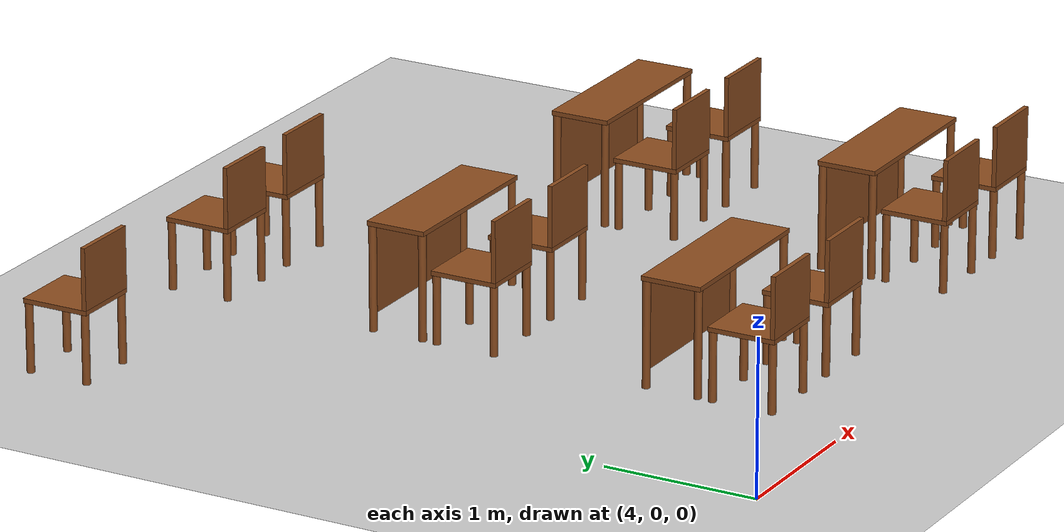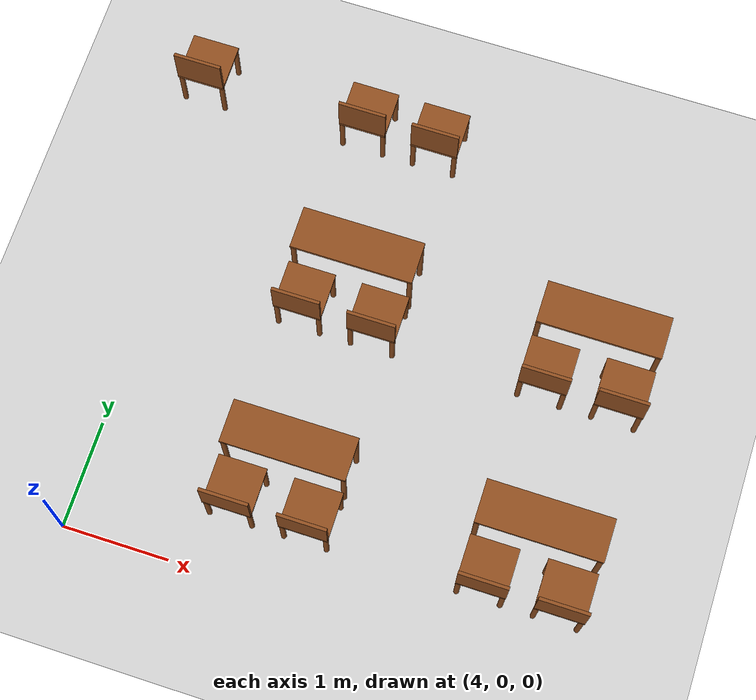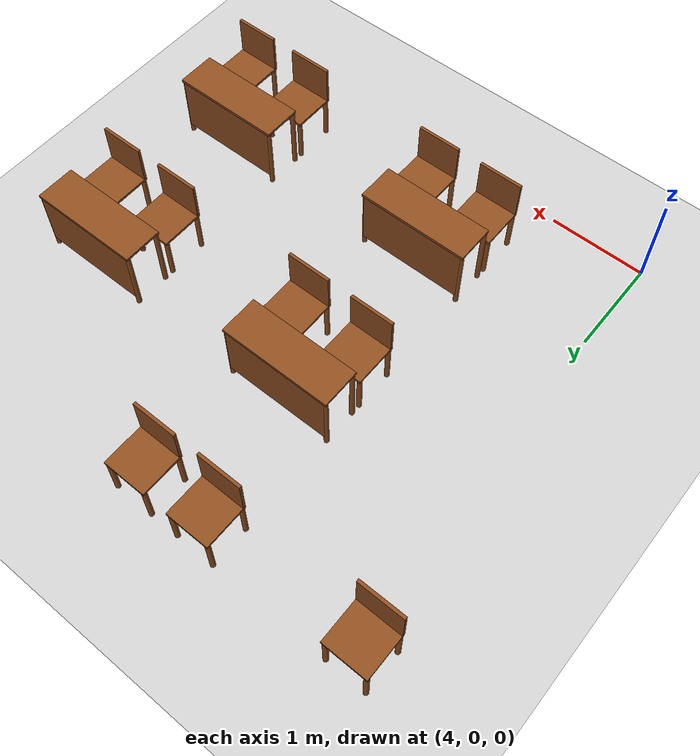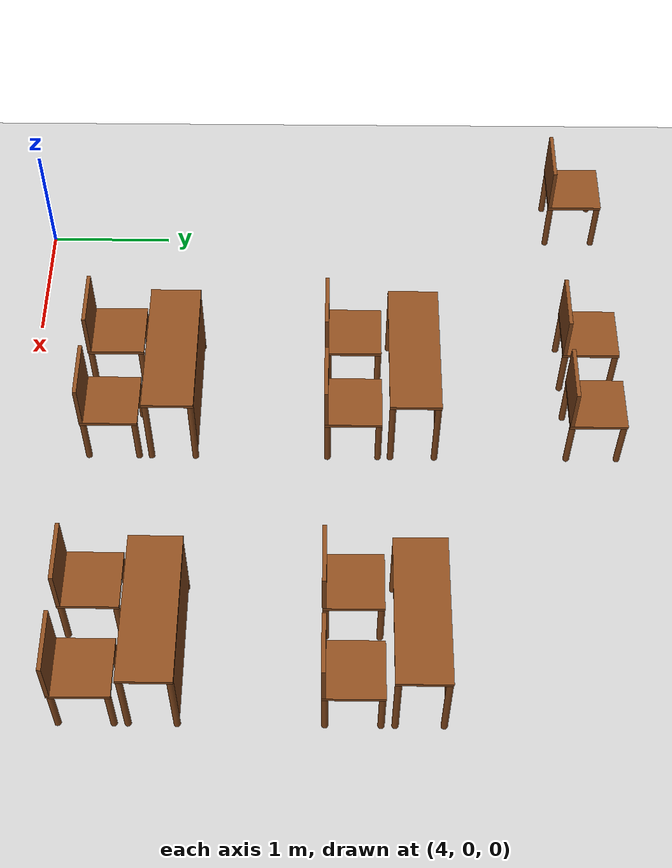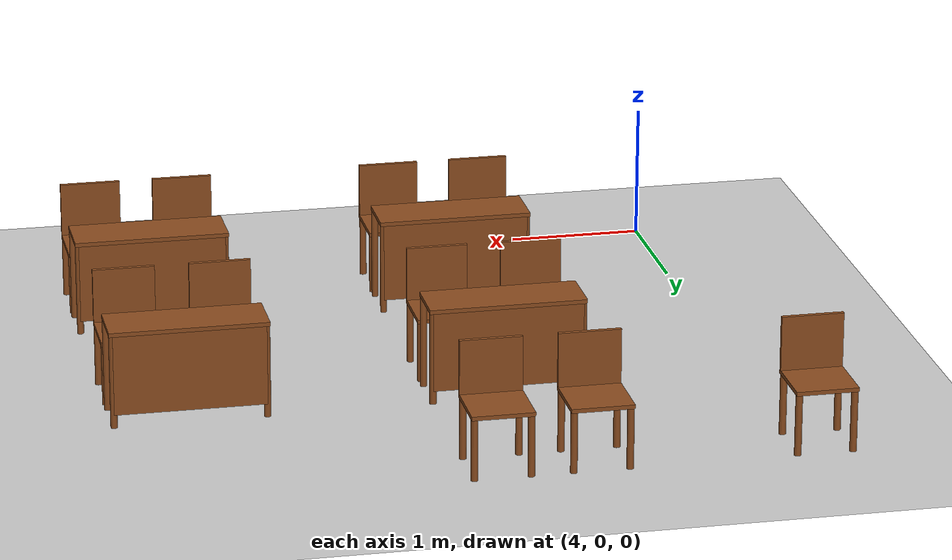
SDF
<sdf version="1.6">
 <world name="lecture_hall">
  <include><uri>model://ground_plane</uri></include>
  <include><uri>model://sun</uri></include>
  <model name="chair_3_2_2">
   <static>true</static>
   <pose>3.800 4.525 0 0 0 0</pose>
   <link name="link">
    <collision name="c_leg0">
     <pose>-0.200 -0.200 0.225 0 0 0</pose>
     <geometry><cylinder><radius>0.025</radius><length>0.450</length></cylinder></geometry>
    </collision>
    <visual name="v_leg0">
     <pose>-0.200 -0.200 0.225 0 0 0</pose>
     <geometry><cylinder><radius>0.025</radius><length>0.450</length></cylinder></geometry>
     <material><ambient>0.45 0.25 0.1 1</ambient><diffuse>0.55 0.3 0.12 1</diffuse></material>
    </visual>
    <collision name="c_leg1">
     <pose>-0.200 0.200 0.225 0 0 0</pose>
     <geometry><cylinder><radius>0.025</radius><length>0.450</length></cylinder></geometry>
    </collision>
    <visual name="v_leg1">
     <pose>-0.200 0.200 0.225 0 0 0</pose>
     <geometry><cylinder><radius>0.025</radius><length>0.450</length></cylinder></geometry>
     <material><ambient>0.45 0.25 0.1 1</ambient><diffuse>0.55 0.3 0.12 1</diffuse></material>
    </visual>
    <collision name="c_leg2">
     <pose>0.200 -0.200 0.225 0 0 0</pose>
     <geometry><cylinder><radius>0.025</radius><length>0.450</length></cylinder></geometry>
    </collision>
    <visual name="v_leg2">
     <pose>0.200 -0.200 0.225 0 0 0</pose>
     <geometry><cylinder><radius>0.025</radius><length>0.450</length></cylinder></geometry>
     <material><ambient>0.45 0.25 0.1 1</ambient><diffuse>0.55 0.3 0.12 1</diffuse></material>
    </visual>
    <collision name="c_leg3">
     <pose>0.200 0.200 0.225 0 0 0</pose>
     <geometry><cylinder><radius>0.025</radius><length>0.450</length></cylinder></geometry>
    </collision>
    <visual name="v_leg3">
     <pose>0.200 0.200 0.225 0 0 0</pose>
     <geometry><cylinder><radius>0.025</radius><length>0.450</length></cylinder></geometry>
     <material><ambient>0.45 0.25 0.1 1</ambient><diffuse>0.55 0.3 0.12 1</diffuse></material>
    </visual>
    <collision name="c_seat">
     <pose>0.000 0.000 0.465 0 0 0</pose>
     <geometry><box><size>0.450 0.450 0.030</size></box></geometry>
    </collision>
    <visual name="v_seat">
     <pose>0.000 0.000 0.465 0 0 0</pose>
     <geometry><box><size>0.450 0.450 0.030</size></box></geometry>
     <material><ambient>0.45 0.25 0.1 1</ambient><diffuse>0.55 0.3 0.12 1</diffuse></material>
    </visual>
    <collision name="c_back">
     <pose>0.000 -0.210 0.680 0 0 0</pose>
     <geometry><box><size>0.450 0.030 0.400</size></box></geometry>
    </collision>
    <visual name="v_back">
     <pose>0.000 -0.210 0.680 0 0 0</pose>
     <geometry><box><size>0.450 0.030 0.400</size></box></geometry>
     <material><ambient>0.45 0.25 0.1 1</ambient><diffuse>0.55 0.3 0.12 1</diffuse></material>
    </visual>
   </link>
  </model>
  <model name="chair_3_3_1">
   <static>true</static>
   <pose>5.400 4.525 0 0 0 0</pose>
   <link name="link">
    <collision name="c_leg0">
     <pose>-0.200 -0.200 0.225 0 0 0</pose>
     <geometry><cylinder><radius>0.025</radius><length>0.450</length></cylinder></geometry>
    </collision>
    <visual name="v_leg0">
     <pose>-0.200 -0.200 0.225 0 0 0</pose>
     <geometry><cylinder><radius>0.025</radius><length>0.450</length></cylinder></geometry>
     <material><ambient>0.45 0.25 0.1 1</ambient><diffuse>0.55 0.3 0.12 1</diffuse></material>
    </visual>
    <collision name="c_leg1">
     <pose>-0.200 0.200 0.225 0 0 0</pose>
     <geometry><cylinder><radius>0.025</radius><length>0.450</length></cylinder></geometry>
    </collision>
    <visual name="v_leg1">
     <pose>-0.200 0.200 0.225 0 0 0</pose>
     <geometry><cylinder><radius>0.025</radius><length>0.450</length></cylinder></geometry>
     <material><ambient>0.45 0.25 0.1 1</ambient><diffuse>0.55 0.3 0.12 1</diffuse></material>
    </visual>
    <collision name="c_leg2">
     <pose>0.200 -0.200 0.225 0 0 0</pose>
     <geometry><cylinder><radius>0.025</radius><length>0.450</length></cylinder></geometry>
    </collision>
    <visual name="v_leg2">
     <pose>0.200 -0.200 0.225 0 0 0</pose>
     <geometry><cylinder><radius>0.025</radius><length>0.450</length></cylinder></geometry>
     <material><ambient>0.45 0.25 0.1 1</ambient><diffuse>0.55 0.3 0.12 1</diffuse></material>
    </visual>
    <collision name="c_leg3">
     <pose>0.200 0.200 0.225 0 0 0</pose>
     <geometry><cylinder><radius>0.025</radius><length>0.450</length></cylinder></geometry>
    </collision>
    <visual name="v_leg3">
     <pose>0.200 0.200 0.225 0 0 0</pose>
     <geometry><cylinder><radius>0.025</radius><length>0.450</length></cylinder></geometry>
     <material><ambient>0.45 0.25 0.1 1</ambient><diffuse>0.55 0.3 0.12 1</diffuse></material>
    </visual>
    <collision name="c_seat">
     <pose>0.000 0.000 0.465 0 0 0</pose>
     <geometry><box><size>0.450 0.450 0.030</size></box></geometry>
    </collision>
    <visual name="v_seat">
     <pose>0.000 0.000 0.465 0 0 0</pose>
     <geometry><box><size>0.450 0.450 0.030</size></box></geometry>
     <material><ambient>0.45 0.25 0.1 1</ambient><diffuse>0.55 0.3 0.12 1</diffuse></material>
    </visual>
    <collision name="c_back">
     <pose>0.000 -0.210 0.680 0 0 0</pose>
     <geometry><box><size>0.450 0.030 0.400</size></box></geometry>
    </collision>
    <visual name="v_back">
     <pose>0.000 -0.210 0.680 0 0 0</pose>
     <geometry><box><size>0.450 0.030 0.400</size></box></geometry>
     <material><ambient>0.45 0.25 0.1 1</ambient><diffuse>0.55 0.3 0.12 1</diffuse></material>
    </visual>
   </link>
  </model>
  <model name="chair_3_3_2">
   <static>true</static>
   <pose>6.100 4.525 0 0 0 0</pose>
   <link name="link">
    <collision name="c_leg0">
     <pose>-0.200 -0.200 0.225 0 0 0</pose>
     <geometry><cylinder><radius>0.025</radius><length>0.450</length></cylinder></geometry>
    </collision>
    <visual name="v_leg0">
     <pose>-0.200 -0.200 0.225 0 0 0</pose>
     <geometry><cylinder><radius>0.025</radius><length>0.450</length></cylinder></geometry>
     <material><ambient>0.45 0.25 0.1 1</ambient><diffuse>0.55 0.3 0.12 1</diffuse></material>
    </visual>
    <collision name="c_leg1">
     <pose>-0.200 0.200 0.225 0 0 0</pose>
     <geometry><cylinder><radius>0.025</radius><length>0.450</length></cylinder></geometry>
    </collision>
    <visual name="v_leg1">
     <pose>-0.200 0.200 0.225 0 0 0</pose>
     <geometry><cylinder><radius>0.025</radius><length>0.450</length></cylinder></geometry>
     <material><ambient>0.45 0.25 0.1 1</ambient><diffuse>0.55 0.3 0.12 1</diffuse></material>
    </visual>
    <collision name="c_leg2">
     <pose>0.200 -0.200 0.225 0 0 0</pose>
     <geometry><cylinder><radius>0.025</radius><length>0.450</length></cylinder></geometry>
    </collision>
    <visual name="v_leg2">
     <pose>0.200 -0.200 0.225 0 0 0</pose>
     <geometry><cylinder><radius>0.025</radius><length>0.450</length></cylinder></geometry>
     <material><ambient>0.45 0.25 0.1 1</ambient><diffuse>0.55 0.3 0.12 1</diffuse></material>
    </visual>
    <collision name="c_leg3">
     <pose>0.200 0.200 0.225 0 0 0</pose>
     <geometry><cylinder><radius>0.025</radius><length>0.450</length></cylinder></geometry>
    </collision>
    <visual name="v_leg3">
     <pose>0.200 0.200 0.225 0 0 0</pose>
     <geometry><cylinder><radius>0.025</radius><length>0.450</length></cylinder></geometry>
     <material><ambient>0.45 0.25 0.1 1</ambient><diffuse>0.55 0.3 0.12 1</diffuse></material>
    </visual>
    <collision name="c_seat">
     <pose>0.000 0.000 0.465 0 0 0</pose>
     <geometry><box><size>0.450 0.450 0.030</size></box></geometry>
    </collision>
    <visual name="v_seat">
     <pose>0.000 0.000 0.465 0 0 0</pose>
     <geometry><box><size>0.450 0.450 0.030</size></box></geometry>
     <material><ambient>0.45 0.25 0.1 1</ambient><diffuse>0.55 0.3 0.12 1</diffuse></material>
    </visual>
    <collision name="c_back">
     <pose>0.000 -0.210 0.680 0 0 0</pose>
     <geometry><box><size>0.450 0.030 0.400</size></box></geometry>
    </collision>
    <visual name="v_back">
     <pose>0.000 -0.210 0.680 0 0 0</pose>
     <geometry><box><size>0.450 0.030 0.400</size></box></geometry>
     <material><ambient>0.45 0.25 0.1 1</ambient><diffuse>0.55 0.3 0.12 1</diffuse></material>
    </visual>
   </link>
  </model>
  <model name="desk_4_3">
   <static>true</static>
   <pose>5.750 3.100 0 0 0 0</pose>
   <link name="link">
    <collision name="c_leg0">
     <pose>-0.550 -0.175 0.345 0 0 0</pose>
     <geometry><cylinder><radius>0.025</radius><length>0.690</length></cylinder></geometry>
    </collision>
    <visual name="v_leg0">
     <pose>-0.550 -0.175 0.345 0 0 0</pose>
     <geometry><cylinder><radius>0.025</radius><length>0.690</length></cylinder></geometry>
     <material><ambient>0.45 0.25 0.1 1</ambient><diffuse>0.55 0.3 0.12 1</diffuse></material>
    </visual>
    <collision name="c_leg1">
     <pose>-0.550 0.175 0.345 0 0 0</pose>
     <geometry><cylinder><radius>0.025</radius><length>0.690</length></cylinder></geometry>
    </collision>
    <visual name="v_leg1">
     <pose>-0.550 0.175 0.345 0 0 0</pose>
     <geometry><cylinder><radius>0.025</radius><length>0.690</length></cylinder></geometry>
     <material><ambient>0.45 0.25 0.1 1</ambient><diffuse>0.55 0.3 0.12 1</diffuse></material>
    </visual>
    <collision name="c_leg2">
     <pose>0.550 -0.175 0.345 0 0 0</pose>
     <geometry><cylinder><radius>0.025</radius><length>0.690</length></cylinder></geometry>
    </collision>
    <visual name="v_leg2">
     <pose>0.550 -0.175 0.345 0 0 0</pose>
     <geometry><cylinder><radius>0.025</radius><length>0.690</length></cylinder></geometry>
     <material><ambient>0.45 0.25 0.1 1</ambient><diffuse>0.55 0.3 0.12 1</diffuse></material>
    </visual>
    <collision name="c_leg3">
     <pose>0.550 0.175 0.345 0 0 0</pose>
     <geometry><cylinder><radius>0.025</radius><length>0.690</length></cylinder></geometry>
    </collision>
    <visual name="v_leg3">
     <pose>0.550 0.175 0.345 0 0 0</pose>
     <geometry><cylinder><radius>0.025</radius><length>0.690</length></cylinder></geometry>
     <material><ambient>0.45 0.25 0.1 1</ambient><diffuse>0.55 0.3 0.12 1</diffuse></material>
    </visual>
    <collision name="c_top">
     <pose>0.000 0.000 0.705 0 0 0</pose>
     <geometry><box><size>1.150 0.400 0.030</size></box></geometry>
    </collision>
    <visual name="v_top">
     <pose>0.000 0.000 0.705 0 0 0</pose>
     <geometry><box><size>1.150 0.400 0.030</size></box></geometry>
     <material><ambient>0.45 0.25 0.1 1</ambient><diffuse>0.55 0.3 0.12 1</diffuse></material>
    </visual>
    <collision name="c_panel">
     <pose>0.000 0.190 0.395 0 0 0</pose>
     <geometry><box><size>1.100 0.020 0.590</size></box></geometry>
    </collision>
    <visual name="v_panel">
     <pose>0.000 0.190 0.395 0 0 0</pose>
     <geometry><box><size>1.100 0.020 0.590</size></box></geometry>
     <material><ambient>0.45 0.25 0.1 1</ambient><diffuse>0.55 0.3 0.12 1</diffuse></material>
    </visual>
   </link>
  </model>
  <model name="chair_4_3_1">
   <static>true</static>
   <pose>5.400 2.625 0 0 0 0</pose>
   <link name="link">
    <collision name="c_leg0">
     <pose>-0.200 -0.200 0.225 0 0 0</pose>
     <geometry><cylinder><radius>0.025</radius><length>0.450</length></cylinder></geometry>
    </collision>
    <visual name="v_leg0">
     <pose>-0.200 -0.200 0.225 0 0 0</pose>
     <geometry><cylinder><radius>0.025</radius><length>0.450</length></cylinder></geometry>
     <material><ambient>0.45 0.25 0.1 1</ambient><diffuse>0.55 0.3 0.12 1</diffuse></material>
    </visual>
    <collision name="c_leg1">
     <pose>-0.200 0.200 0.225 0 0 0</pose>
     <geometry><cylinder><radius>0.025</radius><length>0.450</length></cylinder></geometry>
    </collision>
    <visual name="v_leg1">
     <pose>-0.200 0.200 0.225 0 0 0</pose>
     <geometry><cylinder><radius>0.025</radius><length>0.450</length></cylinder></geometry>
     <material><ambient>0.45 0.25 0.1 1</ambient><diffuse>0.55 0.3 0.12 1</diffuse></material>
    </visual>
    <collision name="c_leg2">
     <pose>0.200 -0.200 0.225 0 0 0</pose>
     <geometry><cylinder><radius>0.025</radius><length>0.450</length></cylinder></geometry>
    </collision>
    <visual name="v_leg2">
     <pose>0.200 -0.200 0.225 0 0 0</pose>
     <geometry><cylinder><radius>0.025</radius><length>0.450</length></cylinder></geometry>
     <material><ambient>0.45 0.25 0.1 1</ambient><diffuse>0.55 0.3 0.12 1</diffuse></material>
    </visual>
    <collision name="c_leg3">
     <pose>0.200 0.200 0.225 0 0 0</pose>
     <geometry><cylinder><radius>0.025</radius><length>0.450</length></cylinder></geometry>
    </collision>
    <visual name="v_leg3">
     <pose>0.200 0.200 0.225 0 0 0</pose>
     <geometry><cylinder><radius>0.025</radius><length>0.450</length></cylinder></geometry>
     <material><ambient>0.45 0.25 0.1 1</ambient><diffuse>0.55 0.3 0.12 1</diffuse></material>
    </visual>
    <collision name="c_seat">
     <pose>0.000 0.000 0.465 0 0 0</pose>
     <geometry><box><size>0.450 0.450 0.030</size></box></geometry>
    </collision>
    <visual name="v_seat">
     <pose>0.000 0.000 0.465 0 0 0</pose>
     <geometry><box><size>0.450 0.450 0.030</size></box></geometry>
     <material><ambient>0.45 0.25 0.1 1</ambient><diffuse>0.55 0.3 0.12 1</diffuse></material>
    </visual>
    <collision name="c_back">
     <pose>0.000 -0.210 0.680 0 0 0</pose>
     <geometry><box><size>0.450 0.030 0.400</size></box></geometry>
    </collision>
    <visual name="v_back">
     <pose>0.000 -0.210 0.680 0 0 0</pose>
     <geometry><box><size>0.450 0.030 0.400</size></box></geometry>
     <material><ambient>0.45 0.25 0.1 1</ambient><diffuse>0.55 0.3 0.12 1</diffuse></material>
    </visual>
   </link>
  </model>
  <model name="chair_4_3_2">
   <static>true</static>
   <pose>6.100 2.625 0 0 0 0</pose>
   <link name="link">
    <collision name="c_leg0">
     <pose>-0.200 -0.200 0.225 0 0 0</pose>
     <geometry><cylinder><radius>0.025</radius><length>0.450</length></cylinder></geometry>
    </collision>
    <visual name="v_leg0">
     <pose>-0.200 -0.200 0.225 0 0 0</pose>
     <geometry><cylinder><radius>0.025</radius><length>0.450</length></cylinder></geometry>
     <material><ambient>0.45 0.25 0.1 1</ambient><diffuse>0.55 0.3 0.12 1</diffuse></material>
    </visual>
    <collision name="c_leg1">
     <pose>-0.200 0.200 0.225 0 0 0</pose>
     <geometry><cylinder><radius>0.025</radius><length>0.450</length></cylinder></geometry>
    </collision>
    <visual name="v_leg1">
     <pose>-0.200 0.200 0.225 0 0 0</pose>
     <geometry><cylinder><radius>0.025</radius><length>0.450</length></cylinder></geometry>
     <material><ambient>0.45 0.25 0.1 1</ambient><diffuse>0.55 0.3 0.12 1</diffuse></material>
    </visual>
    <collision name="c_leg2">
     <pose>0.200 -0.200 0.225 0 0 0</pose>
     <geometry><cylinder><radius>0.025</radius><length>0.450</length></cylinder></geometry>
    </collision>
    <visual name="v_leg2">
     <pose>0.200 -0.200 0.225 0 0 0</pose>
     <geometry><cylinder><radius>0.025</radius><length>0.450</length></cylinder></geometry>
     <material><ambient>0.45 0.25 0.1 1</ambient><diffuse>0.55 0.3 0.12 1</diffuse></material>
    </visual>
    <collision name="c_leg3">
     <pose>0.200 0.200 0.225 0 0 0</pose>
     <geometry><cylinder><radius>0.025</radius><length>0.450</length></cylinder></geometry>
    </collision>
    <visual name="v_leg3">
     <pose>0.200 0.200 0.225 0 0 0</pose>
     <geometry><cylinder><radius>0.025</radius><length>0.450</length></cylinder></geometry>
     <material><ambient>0.45 0.25 0.1 1</ambient><diffuse>0.55 0.3 0.12 1</diffuse></material>
    </visual>
    <collision name="c_seat">
     <pose>0.000 0.000 0.465 0 0 0</pose>
     <geometry><box><size>0.450 0.450 0.030</size></box></geometry>
    </collision>
    <visual name="v_seat">
     <pose>0.000 0.000 0.465 0 0 0</pose>
     <geometry><box><size>0.450 0.450 0.030</size></box></geometry>
     <material><ambient>0.45 0.25 0.1 1</ambient><diffuse>0.55 0.3 0.12 1</diffuse></material>
    </visual>
    <collision name="c_back">
     <pose>0.000 -0.210 0.680 0 0 0</pose>
     <geometry><box><size>0.450 0.030 0.400</size></box></geometry>
    </collision>
    <visual name="v_back">
     <pose>0.000 -0.210 0.680 0 0 0</pose>
     <geometry><box><size>0.450 0.030 0.400</size></box></geometry>
     <material><ambient>0.45 0.25 0.1 1</ambient><diffuse>0.55 0.3 0.12 1</diffuse></material>
    </visual>
   </link>
  </model>
  <model name="desk_4_4">
   <static>true</static>
   <pose>8.050 3.100 0 0 0 0</pose>
   <link name="link">
    <collision name="c_leg0">
     <pose>-0.550 -0.175 0.345 0 0 0</pose>
     <geometry><cylinder><radius>0.025</radius><length>0.690</length></cylinder></geometry>
    </collision>
    <visual name="v_leg0">
     <pose>-0.550 -0.175 0.345 0 0 0</pose>
     <geometry><cylinder><radius>0.025</radius><length>0.690</length></cylinder></geometry>
     <material><ambient>0.45 0.25 0.1 1</ambient><diffuse>0.55 0.3 0.12 1</diffuse></material>
    </visual>
    <collision name="c_leg1">
     <pose>-0.550 0.175 0.345 0 0 0</pose>
     <geometry><cylinder><radius>0.025</radius><length>0.690</length></cylinder></geometry>
    </collision>
    <visual name="v_leg1">
     <pose>-0.550 0.175 0.345 0 0 0</pose>
     <geometry><cylinder><radius>0.025</radius><length>0.690</length></cylinder></geometry>
     <material><ambient>0.45 0.25 0.1 1</ambient><diffuse>0.55 0.3 0.12 1</diffuse></material>
    </visual>
    <collision name="c_leg2">
     <pose>0.550 -0.175 0.345 0 0 0</pose>
     <geometry><cylinder><radius>0.025</radius><length>0.690</length></cylinder></geometry>
    </collision>
    <visual name="v_leg2">
     <pose>0.550 -0.175 0.345 0 0 0</pose>
     <geometry><cylinder><radius>0.025</radius><length>0.690</length></cylinder></geometry>
     <material><ambient>0.45 0.25 0.1 1</ambient><diffuse>0.55 0.3 0.12 1</diffuse></material>
    </visual>
    <collision name="c_leg3">
     <pose>0.550 0.175 0.345 0 0 0</pose>
     <geometry><cylinder><radius>0.025</radius><length>0.690</length></cylinder></geometry>
    </collision>
    <visual name="v_leg3">
     <pose>0.550 0.175 0.345 0 0 0</pose>
     <geometry><cylinder><radius>0.025</radius><length>0.690</length></cylinder></geometry>
     <material><ambient>0.45 0.25 0.1 1</ambient><diffuse>0.55 0.3 0.12 1</diffuse></material>
    </visual>
    <collision name="c_top">
     <pose>0.000 0.000 0.705 0 0 0</pose>
     <geometry><box><size>1.150 0.400 0.030</size></box></geometry>
    </collision>
    <visual name="v_top">
     <pose>0.000 0.000 0.705 0 0 0</pose>
     <geometry><box><size>1.150 0.400 0.030</size></box></geometry>
     <material><ambient>0.45 0.25 0.1 1</ambient><diffuse>0.55 0.3 0.12 1</diffuse></material>
    </visual>
    <collision name="c_panel">
     <pose>0.000 0.190 0.395 0 0 0</pose>
     <geometry><box><size>1.100 0.020 0.590</size></box></geometry>
    </collision>
    <visual name="v_panel">
     <pose>0.000 0.190 0.395 0 0 0</pose>
     <geometry><box><size>1.100 0.020 0.590</size></box></geometry>
     <material><ambient>0.45 0.25 0.1 1</ambient><diffuse>0.55 0.3 0.12 1</diffuse></material>
    </visual>
   </link>
  </model>
  <model name="chair_4_4_1">
   <static>true</static>
   <pose>7.700 2.625 0 0 0 0</pose>
   <link name="link">
    <collision name="c_leg0">
     <pose>-0.200 -0.200 0.225 0 0 0</pose>
     <geometry><cylinder><radius>0.025</radius><length>0.450</length></cylinder></geometry>
    </collision>
    <visual name="v_leg0">
     <pose>-0.200 -0.200 0.225 0 0 0</pose>
     <geometry><cylinder><radius>0.025</radius><length>0.450</length></cylinder></geometry>
     <material><ambient>0.45 0.25 0.1 1</ambient><diffuse>0.55 0.3 0.12 1</diffuse></material>
    </visual>
    <collision name="c_leg1">
     <pose>-0.200 0.200 0.225 0 0 0</pose>
     <geometry><cylinder><radius>0.025</radius><length>0.450</length></cylinder></geometry>
    </collision>
    <visual name="v_leg1">
     <pose>-0.200 0.200 0.225 0 0 0</pose>
     <geometry><cylinder><radius>0.025</radius><length>0.450</length></cylinder></geometry>
     <material><ambient>0.45 0.25 0.1 1</ambient><diffuse>0.55 0.3 0.12 1</diffuse></material>
    </visual>
    <collision name="c_leg2">
     <pose>0.200 -0.200 0.225 0 0 0</pose>
     <geometry><cylinder><radius>0.025</radius><length>0.450</length></cylinder></geometry>
    </collision>
    <visual name="v_leg2">
     <pose>0.200 -0.200 0.225 0 0 0</pose>
     <geometry><cylinder><radius>0.025</radius><length>0.450</length></cylinder></geometry>
     <material><ambient>0.45 0.25 0.1 1</ambient><diffuse>0.55 0.3 0.12 1</diffuse></material>
    </visual>
    <collision name="c_leg3">
     <pose>0.200 0.200 0.225 0 0 0</pose>
     <geometry><cylinder><radius>0.025</radius><length>0.450</length></cylinder></geometry>
    </collision>
    <visual name="v_leg3">
     <pose>0.200 0.200 0.225 0 0 0</pose>
     <geometry><cylinder><radius>0.025</radius><length>0.450</length></cylinder></geometry>
     <material><ambient>0.45 0.25 0.1 1</ambient><diffuse>0.55 0.3 0.12 1</diffuse></material>
    </visual>
    <collision name="c_seat">
     <pose>0.000 0.000 0.465 0 0 0</pose>
     <geometry><box><size>0.450 0.450 0.030</size></box></geometry>
    </collision>
    <visual name="v_seat">
     <pose>0.000 0.000 0.465 0 0 0</pose>
     <geometry><box><size>0.450 0.450 0.030</size></box></geometry>
     <material><ambient>0.45 0.25 0.1 1</ambient><diffuse>0.55 0.3 0.12 1</diffuse></material>
    </visual>
    <collision name="c_back">
     <pose>0.000 -0.210 0.680 0 0 0</pose>
     <geometry><box><size>0.450 0.030 0.400</size></box></geometry>
    </collision>
    <visual name="v_back">
     <pose>0.000 -0.210 0.680 0 0 0</pose>
     <geometry><box><size>0.450 0.030 0.400</size></box></geometry>
     <material><ambient>0.45 0.25 0.1 1</ambient><diffuse>0.55 0.3 0.12 1</diffuse></material>
    </visual>
   </link>
  </model>
  <model name="chair_4_4_2">
   <static>true</static>
   <pose>8.400 2.625 0 0 0 0</pose>
   <link name="link">
    <collision name="c_leg0">
     <pose>-0.200 -0.200 0.225 0 0 0</pose>
     <geometry><cylinder><radius>0.025</radius><length>0.450</length></cylinder></geometry>
    </collision>
    <visual name="v_leg0">
     <pose>-0.200 -0.200 0.225 0 0 0</pose>
     <geometry><cylinder><radius>0.025</radius><length>0.450</length></cylinder></geometry>
     <material><ambient>0.45 0.25 0.1 1</ambient><diffuse>0.55 0.3 0.12 1</diffuse></material>
    </visual>
    <collision name="c_leg1">
     <pose>-0.200 0.200 0.225 0 0 0</pose>
     <geometry><cylinder><radius>0.025</radius><length>0.450</length></cylinder></geometry>
    </collision>
    <visual name="v_leg1">
     <pose>-0.200 0.200 0.225 0 0 0</pose>
     <geometry><cylinder><radius>0.025</radius><length>0.450</length></cylinder></geometry>
     <material><ambient>0.45 0.25 0.1 1</ambient><diffuse>0.55 0.3 0.12 1</diffuse></material>
    </visual>
    <collision name="c_leg2">
     <pose>0.200 -0.200 0.225 0 0 0</pose>
     <geometry><cylinder><radius>0.025</radius><length>0.450</length></cylinder></geometry>
    </collision>
    <visual name="v_leg2">
     <pose>0.200 -0.200 0.225 0 0 0</pose>
     <geometry><cylinder><radius>0.025</radius><length>0.450</length></cylinder></geometry>
     <material><ambient>0.45 0.25 0.1 1</ambient><diffuse>0.55 0.3 0.12 1</diffuse></material>
    </visual>
    <collision name="c_leg3">
     <pose>0.200 0.200 0.225 0 0 0</pose>
     <geometry><cylinder><radius>0.025</radius><length>0.450</length></cylinder></geometry>
    </collision>
    <visual name="v_leg3">
     <pose>0.200 0.200 0.225 0 0 0</pose>
     <geometry><cylinder><radius>0.025</radius><length>0.450</length></cylinder></geometry>
     <material><ambient>0.45 0.25 0.1 1</ambient><diffuse>0.55 0.3 0.12 1</diffuse></material>
    </visual>
    <collision name="c_seat">
     <pose>0.000 0.000 0.465 0 0 0</pose>
     <geometry><box><size>0.450 0.450 0.030</size></box></geometry>
    </collision>
    <visual name="v_seat">
     <pose>0.000 0.000 0.465 0 0 0</pose>
     <geometry><box><size>0.450 0.450 0.030</size></box></geometry>
     <material><ambient>0.45 0.25 0.1 1</ambient><diffuse>0.55 0.3 0.12 1</diffuse></material>
    </visual>
    <collision name="c_back">
     <pose>0.000 -0.210 0.680 0 0 0</pose>
     <geometry><box><size>0.450 0.030 0.400</size></box></geometry>
    </collision>
    <visual name="v_back">
     <pose>0.000 -0.210 0.680 0 0 0</pose>
     <geometry><box><size>0.450 0.030 0.400</size></box></geometry>
     <material><ambient>0.45 0.25 0.1 1</ambient><diffuse>0.55 0.3 0.12 1</diffuse></material>
    </visual>
   </link>
  </model>
  <model name="desk_5_3">
   <static>true</static>
   <pose>5.750 1.200 0 0 0 0</pose>
   <link name="link">
    <collision name="c_leg0">
     <pose>-0.550 -0.175 0.345 0 0 0</pose>
     <geometry><cylinder><radius>0.025</radius><length>0.690</length></cylinder></geometry>
    </collision>
    <visual name="v_leg0">
     <pose>-0.550 -0.175 0.345 0 0 0</pose>
     <geometry><cylinder><radius>0.025</radius><length>0.690</length></cylinder></geometry>
     <material><ambient>0.45 0.25 0.1 1</ambient><diffuse>0.55 0.3 0.12 1</diffuse></material>
    </visual>
    <collision name="c_leg1">
     <pose>-0.550 0.175 0.345 0 0 0</pose>
     <geometry><cylinder><radius>0.025</radius><length>0.690</length></cylinder></geometry>
    </collision>
    <visual name="v_leg1">
     <pose>-0.550 0.175 0.345 0 0 0</pose>
     <geometry><cylinder><radius>0.025</radius><length>0.690</length></cylinder></geometry>
     <material><ambient>0.45 0.25 0.1 1</ambient><diffuse>0.55 0.3 0.12 1</diffuse></material>
    </visual>
    <collision name="c_leg2">
     <pose>0.550 -0.175 0.345 0 0 0</pose>
     <geometry><cylinder><radius>0.025</radius><length>0.690</length></cylinder></geometry>
    </collision>
    <visual name="v_leg2">
     <pose>0.550 -0.175 0.345 0 0 0</pose>
     <geometry><cylinder><radius>0.025</radius><length>0.690</length></cylinder></geometry>
     <material><ambient>0.45 0.25 0.1 1</ambient><diffuse>0.55 0.3 0.12 1</diffuse></material>
    </visual>
    <collision name="c_leg3">
     <pose>0.550 0.175 0.345 0 0 0</pose>
     <geometry><cylinder><radius>0.025</radius><length>0.690</length></cylinder></geometry>
    </collision>
    <visual name="v_leg3">
     <pose>0.550 0.175 0.345 0 0 0</pose>
     <geometry><cylinder><radius>0.025</radius><length>0.690</length></cylinder></geometry>
     <material><ambient>0.45 0.25 0.1 1</ambient><diffuse>0.55 0.3 0.12 1</diffuse></material>
    </visual>
    <collision name="c_top">
     <pose>0.000 0.000 0.705 0 0 0</pose>
     <geometry><box><size>1.150 0.400 0.030</size></box></geometry>
    </collision>
    <visual name="v_top">
     <pose>0.000 0.000 0.705 0 0 0</pose>
     <geometry><box><size>1.150 0.400 0.030</size></box></geometry>
     <material><ambient>0.45 0.25 0.1 1</ambient><diffuse>0.55 0.3 0.12 1</diffuse></material>
    </visual>
    <collision name="c_panel">
     <pose>0.000 0.190 0.395 0 0 0</pose>
     <geometry><box><size>1.100 0.020 0.590</size></box></geometry>
    </collision>
    <visual name="v_panel">
     <pose>0.000 0.190 0.395 0 0 0</pose>
     <geometry><box><size>1.100 0.020 0.590</size></box></geometry>
     <material><ambient>0.45 0.25 0.1 1</ambient><diffuse>0.55 0.3 0.12 1</diffuse></material>
    </visual>
   </link>
  </model>
  <model name="chair_5_3_1">
   <static>true</static>
   <pose>5.400 0.725 0 0 0 0</pose>
   <link name="link">
    <collision name="c_leg0">
     <pose>-0.200 -0.200 0.225 0 0 0</pose>
     <geometry><cylinder><radius>0.025</radius><length>0.450</length></cylinder></geometry>
    </collision>
    <visual name="v_leg0">
     <pose>-0.200 -0.200 0.225 0 0 0</pose>
     <geometry><cylinder><radius>0.025</radius><length>0.450</length></cylinder></geometry>
     <material><ambient>0.45 0.25 0.1 1</ambient><diffuse>0.55 0.3 0.12 1</diffuse></material>
    </visual>
    <collision name="c_leg1">
     <pose>-0.200 0.200 0.225 0 0 0</pose>
     <geometry><cylinder><radius>0.025</radius><length>0.450</length></cylinder></geometry>
    </collision>
    <visual name="v_leg1">
     <pose>-0.200 0.200 0.225 0 0 0</pose>
     <geometry><cylinder><radius>0.025</radius><length>0.450</length></cylinder></geometry>
     <material><ambient>0.45 0.25 0.1 1</ambient><diffuse>0.55 0.3 0.12 1</diffuse></material>
    </visual>
    <collision name="c_leg2">
     <pose>0.200 -0.200 0.225 0 0 0</pose>
     <geometry><cylinder><radius>0.025</radius><length>0.450</length></cylinder></geometry>
    </collision>
    <visual name="v_leg2">
     <pose>0.200 -0.200 0.225 0 0 0</pose>
     <geometry><cylinder><radius>0.025</radius><length>0.450</length></cylinder></geometry>
     <material><ambient>0.45 0.25 0.1 1</ambient><diffuse>0.55 0.3 0.12 1</diffuse></material>
    </visual>
    <collision name="c_leg3">
     <pose>0.200 0.200 0.225 0 0 0</pose>
     <geometry><cylinder><radius>0.025</radius><length>0.450</length></cylinder></geometry>
    </collision>
    <visual name="v_leg3">
     <pose>0.200 0.200 0.225 0 0 0</pose>
     <geometry><cylinder><radius>0.025</radius><length>0.450</length></cylinder></geometry>
     <material><ambient>0.45 0.25 0.1 1</ambient><diffuse>0.55 0.3 0.12 1</diffuse></material>
    </visual>
    <collision name="c_seat">
     <pose>0.000 0.000 0.465 0 0 0</pose>
     <geometry><box><size>0.450 0.450 0.030</size></box></geometry>
    </collision>
    <visual name="v_seat">
     <pose>0.000 0.000 0.465 0 0 0</pose>
     <geometry><box><size>0.450 0.450 0.030</size></box></geometry>
     <material><ambient>0.45 0.25 0.1 1</ambient><diffuse>0.55 0.3 0.12 1</diffuse></material>
    </visual>
    <collision name="c_back">
     <pose>0.000 -0.210 0.680 0 0 0</pose>
     <geometry><box><size>0.450 0.030 0.400</size></box></geometry>
    </collision>
    <visual name="v_back">
     <pose>0.000 -0.210 0.680 0 0 0</pose>
     <geometry><box><size>0.450 0.030 0.400</size></box></geometry>
     <material><ambient>0.45 0.25 0.1 1</ambient><diffuse>0.55 0.3 0.12 1</diffuse></material>
    </visual>
   </link>
  </model>
  <model name="chair_5_3_2">
   <static>true</static>
   <pose>6.100 0.725 0 0 0 0</pose>
   <link name="link">
    <collision name="c_leg0">
     <pose>-0.200 -0.200 0.225 0 0 0</pose>
     <geometry><cylinder><radius>0.025</radius><length>0.450</length></cylinder></geometry>
    </collision>
    <visual name="v_leg0">
     <pose>-0.200 -0.200 0.225 0 0 0</pose>
     <geometry><cylinder><radius>0.025</radius><length>0.450</length></cylinder></geometry>
     <material><ambient>0.45 0.25 0.1 1</ambient><diffuse>0.55 0.3 0.12 1</diffuse></material>
    </visual>
    <collision name="c_leg1">
     <pose>-0.200 0.200 0.225 0 0 0</pose>
     <geometry><cylinder><radius>0.025</radius><length>0.450</length></cylinder></geometry>
    </collision>
    <visual name="v_leg1">
     <pose>-0.200 0.200 0.225 0 0 0</pose>
     <geometry><cylinder><radius>0.025</radius><length>0.450</length></cylinder></geometry>
     <material><ambient>0.45 0.25 0.1 1</ambient><diffuse>0.55 0.3 0.12 1</diffuse></material>
    </visual>
    <collision name="c_leg2">
     <pose>0.200 -0.200 0.225 0 0 0</pose>
     <geometry><cylinder><radius>0.025</radius><length>0.450</length></cylinder></geometry>
    </collision>
    <visual name="v_leg2">
     <pose>0.200 -0.200 0.225 0 0 0</pose>
     <geometry><cylinder><radius>0.025</radius><length>0.450</length></cylinder></geometry>
     <material><ambient>0.45 0.25 0.1 1</ambient><diffuse>0.55 0.3 0.12 1</diffuse></material>
    </visual>
    <collision name="c_leg3">
     <pose>0.200 0.200 0.225 0 0 0</pose>
     <geometry><cylinder><radius>0.025</radius><length>0.450</length></cylinder></geometry>
    </collision>
    <visual name="v_leg3">
     <pose>0.200 0.200 0.225 0 0 0</pose>
     <geometry><cylinder><radius>0.025</radius><length>0.450</length></cylinder></geometry>
     <material><ambient>0.45 0.25 0.1 1</ambient><diffuse>0.55 0.3 0.12 1</diffuse></material>
    </visual>
    <collision name="c_seat">
     <pose>0.000 0.000 0.465 0 0 0</pose>
     <geometry><box><size>0.450 0.450 0.030</size></box></geometry>
    </collision>
    <visual name="v_seat">
     <pose>0.000 0.000 0.465 0 0 0</pose>
     <geometry><box><size>0.450 0.450 0.030</size></box></geometry>
     <material><ambient>0.45 0.25 0.1 1</ambient><diffuse>0.55 0.3 0.12 1</diffuse></material>
    </visual>
    <collision name="c_back">
     <pose>0.000 -0.210 0.680 0 0 0</pose>
     <geometry><box><size>0.450 0.030 0.400</size></box></geometry>
    </collision>
    <visual name="v_back">
     <pose>0.000 -0.210 0.680 0 0 0</pose>
     <geometry><box><size>0.450 0.030 0.400</size></box></geometry>
     <material><ambient>0.45 0.25 0.1 1</ambient><diffuse>0.55 0.3 0.12 1</diffuse></material>
    </visual>
   </link>
  </model>
  <model name="desk_5_4">
   <static>true</static>
   <pose>8.050 1.200 0 0 0 0</pose>
   <link name="link">
    <collision name="c_leg0">
     <pose>-0.550 -0.175 0.345 0 0 0</pose>
     <geometry><cylinder><radius>0.025</radius><length>0.690</length></cylinder></geometry>
    </collision>
    <visual name="v_leg0">
     <pose>-0.550 -0.175 0.345 0 0 0</pose>
     <geometry><cylinder><radius>0.025</radius><length>0.690</length></cylinder></geometry>
     <material><ambient>0.45 0.25 0.1 1</ambient><diffuse>0.55 0.3 0.12 1</diffuse></material>
    </visual>
    <collision name="c_leg1">
     <pose>-0.550 0.175 0.345 0 0 0</pose>
     <geometry><cylinder><radius>0.025</radius><length>0.690</length></cylinder></geometry>
    </collision>
    <visual name="v_leg1">
     <pose>-0.550 0.175 0.345 0 0 0</pose>
     <geometry><cylinder><radius>0.025</radius><length>0.690</length></cylinder></geometry>
     <material><ambient>0.45 0.25 0.1 1</ambient><diffuse>0.55 0.3 0.12 1</diffuse></material>
    </visual>
    <collision name="c_leg2">
     <pose>0.550 -0.175 0.345 0 0 0</pose>
     <geometry><cylinder><radius>0.025</radius><length>0.690</length></cylinder></geometry>
    </collision>
    <visual name="v_leg2">
     <pose>0.550 -0.175 0.345 0 0 0</pose>
     <geometry><cylinder><radius>0.025</radius><length>0.690</length></cylinder></geometry>
     <material><ambient>0.45 0.25 0.1 1</ambient><diffuse>0.55 0.3 0.12 1</diffuse></material>
    </visual>
    <collision name="c_leg3">
     <pose>0.550 0.175 0.345 0 0 0</pose>
     <geometry><cylinder><radius>0.025</radius><length>0.690</length></cylinder></geometry>
    </collision>
    <visual name="v_leg3">
     <pose>0.550 0.175 0.345 0 0 0</pose>
     <geometry><cylinder><radius>0.025</radius><length>0.690</length></cylinder></geometry>
     <material><ambient>0.45 0.25 0.1 1</ambient><diffuse>0.55 0.3 0.12 1</diffuse></material>
    </visual>
    <collision name="c_top">
     <pose>0.000 0.000 0.705 0 0 0</pose>
     <geometry><box><size>1.150 0.400 0.030</size></box></geometry>
    </collision>
    <visual name="v_top">
     <pose>0.000 0.000 0.705 0 0 0</pose>
     <geometry><box><size>1.150 0.400 0.030</size></box></geometry>
     <material><ambient>0.45 0.25 0.1 1</ambient><diffuse>0.55 0.3 0.12 1</diffuse></material>
    </visual>
    <collision name="c_panel">
     <pose>0.000 0.190 0.395 0 0 0</pose>
     <geometry><box><size>1.100 0.020 0.590</size></box></geometry>
    </collision>
    <visual name="v_panel">
     <pose>0.000 0.190 0.395 0 0 0</pose>
     <geometry><box><size>1.100 0.020 0.590</size></box></geometry>
     <material><ambient>0.45 0.25 0.1 1</ambient><diffuse>0.55 0.3 0.12 1</diffuse></material>
    </visual>
   </link>
  </model>
  <model name="chair_5_4_1">
   <static>true</static>
   <pose>7.700 0.725 0 0 0 0</pose>
   <link name="link">
    <collision name="c_leg0">
     <pose>-0.200 -0.200 0.225 0 0 0</pose>
     <geometry><cylinder><radius>0.025</radius><length>0.450</length></cylinder></geometry>
    </collision>
    <visual name="v_leg0">
     <pose>-0.200 -0.200 0.225 0 0 0</pose>
     <geometry><cylinder><radius>0.025</radius><length>0.450</length></cylinder></geometry>
     <material><ambient>0.45 0.25 0.1 1</ambient><diffuse>0.55 0.3 0.12 1</diffuse></material>
    </visual>
    <collision name="c_leg1">
     <pose>-0.200 0.200 0.225 0 0 0</pose>
     <geometry><cylinder><radius>0.025</radius><length>0.450</length></cylinder></geometry>
    </collision>
    <visual name="v_leg1">
     <pose>-0.200 0.200 0.225 0 0 0</pose>
     <geometry><cylinder><radius>0.025</radius><length>0.450</length></cylinder></geometry>
     <material><ambient>0.45 0.25 0.1 1</ambient><diffuse>0.55 0.3 0.12 1</diffuse></material>
    </visual>
    <collision name="c_leg2">
     <pose>0.200 -0.200 0.225 0 0 0</pose>
     <geometry><cylinder><radius>0.025</radius><length>0.450</length></cylinder></geometry>
    </collision>
    <visual name="v_leg2">
     <pose>0.200 -0.200 0.225 0 0 0</pose>
     <geometry><cylinder><radius>0.025</radius><length>0.450</length></cylinder></geometry>
     <material><ambient>0.45 0.25 0.1 1</ambient><diffuse>0.55 0.3 0.12 1</diffuse></material>
    </visual>
    <collision name="c_leg3">
     <pose>0.200 0.200 0.225 0 0 0</pose>
     <geometry><cylinder><radius>0.025</radius><length>0.450</length></cylinder></geometry>
    </collision>
    <visual name="v_leg3">
     <pose>0.200 0.200 0.225 0 0 0</pose>
     <geometry><cylinder><radius>0.025</radius><length>0.450</length></cylinder></geometry>
     <material><ambient>0.45 0.25 0.1 1</ambient><diffuse>0.55 0.3 0.12 1</diffuse></material>
    </visual>
    <collision name="c_seat">
     <pose>0.000 0.000 0.465 0 0 0</pose>
     <geometry><box><size>0.450 0.450 0.030</size></box></geometry>
    </collision>
    <visual name="v_seat">
     <pose>0.000 0.000 0.465 0 0 0</pose>
     <geometry><box><size>0.450 0.450 0.030</size></box></geometry>
     <material><ambient>0.45 0.25 0.1 1</ambient><diffuse>0.55 0.3 0.12 1</diffuse></material>
    </visual>
    <collision name="c_back">
     <pose>0.000 -0.210 0.680 0 0 0</pose>
     <geometry><box><size>0.450 0.030 0.400</size></box></geometry>
    </collision>
    <visual name="v_back">
     <pose>0.000 -0.210 0.680 0 0 0</pose>
     <geometry><box><size>0.450 0.030 0.400</size></box></geometry>
     <material><ambient>0.45 0.25 0.1 1</ambient><diffuse>0.55 0.3 0.12 1</diffuse></material>
    </visual>
   </link>
  </model>
  <model name="chair_5_4_2">
   <static>true</static>
   <pose>8.400 0.725 0 0 0 0</pose>
   <link name="link">
    <collision name="c_leg0">
     <pose>-0.200 -0.200 0.225 0 0 0</pose>
     <geometry><cylinder><radius>0.025</radius><length>0.450</length></cylinder></geometry>
    </collision>
    <visual name="v_leg0">
     <pose>-0.200 -0.200 0.225 0 0 0</pose>
     <geometry><cylinder><radius>0.025</radius><length>0.450</length></cylinder></geometry>
     <material><ambient>0.45 0.25 0.1 1</ambient><diffuse>0.55 0.3 0.12 1</diffuse></material>
    </visual>
    <collision name="c_leg1">
     <pose>-0.200 0.200 0.225 0 0 0</pose>
     <geometry><cylinder><radius>0.025</radius><length>0.450</length></cylinder></geometry>
    </collision>
    <visual name="v_leg1">
     <pose>-0.200 0.200 0.225 0 0 0</pose>
     <geometry><cylinder><radius>0.025</radius><length>0.450</length></cylinder></geometry>
     <material><ambient>0.45 0.25 0.1 1</ambient><diffuse>0.55 0.3 0.12 1</diffuse></material>
    </visual>
    <collision name="c_leg2">
     <pose>0.200 -0.200 0.225 0 0 0</pose>
     <geometry><cylinder><radius>0.025</radius><length>0.450</length></cylinder></geometry>
    </collision>
    <visual name="v_leg2">
     <pose>0.200 -0.200 0.225 0 0 0</pose>
     <geometry><cylinder><radius>0.025</radius><length>0.450</length></cylinder></geometry>
     <material><ambient>0.45 0.25 0.1 1</ambient><diffuse>0.55 0.3 0.12 1</diffuse></material>
    </visual>
    <collision name="c_leg3">
     <pose>0.200 0.200 0.225 0 0 0</pose>
     <geometry><cylinder><radius>0.025</radius><length>0.450</length></cylinder></geometry>
    </collision>
    <visual name="v_leg3">
     <pose>0.200 0.200 0.225 0 0 0</pose>
     <geometry><cylinder><radius>0.025</radius><length>0.450</length></cylinder></geometry>
     <material><ambient>0.45 0.25 0.1 1</ambient><diffuse>0.55 0.3 0.12 1</diffuse></material>
    </visual>
    <collision name="c_seat">
     <pose>0.000 0.000 0.465 0 0 0</pose>
     <geometry><box><size>0.450 0.450 0.030</size></box></geometry>
    </collision>
    <visual name="v_seat">
     <pose>0.000 0.000 0.465 0 0 0</pose>
     <geometry><box><size>0.450 0.450 0.030</size></box></geometry>
     <material><ambient>0.45 0.25 0.1 1</ambient><diffuse>0.55 0.3 0.12 1</diffuse></material>
    </visual>
    <collision name="c_back">
     <pose>0.000 -0.210 0.680 0 0 0</pose>
     <geometry><box><size>0.450 0.030 0.400</size></box></geometry>
    </collision>
    <visual name="v_back">
     <pose>0.000 -0.210 0.680 0 0 0</pose>
     <geometry><box><size>0.450 0.030 0.400</size></box></geometry>
     <material><ambient>0.45 0.25 0.1 1</ambient><diffuse>0.55 0.3 0.12 1</diffuse></material>
    </visual>
   </link>
  </model>
 </world>
</sdf>
